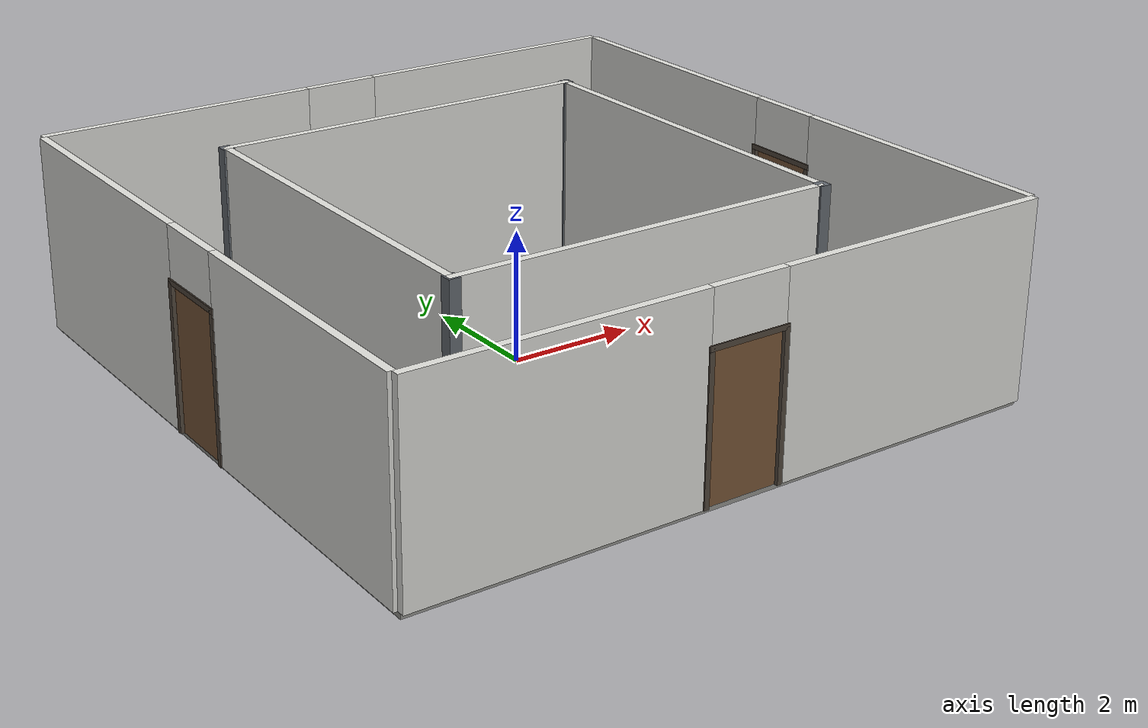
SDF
<?xml version="1.0"?>
<sdf version="1.8">
  <model name="atrium_corridor_10x10">
    <static>true</static>

    <link name="floor_n">
      <pose>0 4.0 -0.04 0 0 0</pose>
      <inertial><mass>1</mass><inertia><ixx>1</ixx><iyy>1</iyy><izz>1</izz></inertia></inertial>
      <collision name="floor_n_col">
        <geometry><box><size>10.0 2.0 0.08</size></box></geometry>
      </collision>
      <visual name="floor_n_vis">
        <geometry><box><size>10.0 2.0 0.08</size></box></geometry>
        <material>
          <ambient>0.58 0.58 0.56 1</ambient>
          <diffuse>0.58 0.58 0.56 1</diffuse>
          <specular>0.12 0.12 0.12 1</specular>
          <pbr>
            <metal>
              <albedo_map>file:///home/han1284/projects/ros2_ws/install/pro450_sim/share/pro450_sim/models/atrium_corridor_10x10/materials/textures/concrete.png</albedo_map>
              <metalness>0.0</metalness>
              <roughness>0.85</roughness>
            </metal>
          </pbr>
        </material>
      </visual>
    </link>
    <link name="floor_s">
      <pose>0 -4.0 -0.04 0 0 0</pose>
      <inertial><mass>1</mass><inertia><ixx>1</ixx><iyy>1</iyy><izz>1</izz></inertia></inertial>
      <collision name="floor_s_col">
        <geometry><box><size>10.0 2.0 0.08</size></box></geometry>
      </collision>
      <visual name="floor_s_vis">
        <geometry><box><size>10.0 2.0 0.08</size></box></geometry>
        <material>
          <ambient>0.58 0.58 0.56 1</ambient>
          <diffuse>0.58 0.58 0.56 1</diffuse>
          <specular>0.12 0.12 0.12 1</specular>
          <pbr>
            <metal>
              <albedo_map>file:///home/han1284/projects/ros2_ws/install/pro450_sim/share/pro450_sim/models/atrium_corridor_10x10/materials/textures/concrete.png</albedo_map>
              <metalness>0.0</metalness>
              <roughness>0.85</roughness>
            </metal>
          </pbr>
        </material>
      </visual>
    </link>
    <link name="floor_e">
      <pose>4.0 0 -0.04 0 0 0</pose>
      <inertial><mass>1</mass><inertia><ixx>1</ixx><iyy>1</iyy><izz>1</izz></inertia></inertial>
      <collision name="floor_e_col">
        <geometry><box><size>2.0 6.0 0.08</size></box></geometry>
      </collision>
      <visual name="floor_e_vis">
        <geometry><box><size>2.0 6.0 0.08</size></box></geometry>
        <material>
          <ambient>0.58 0.58 0.56 1</ambient>
          <diffuse>0.58 0.58 0.56 1</diffuse>
          <specular>0.12 0.12 0.12 1</specular>
          <pbr>
            <metal>
              <albedo_map>file:///home/han1284/projects/ros2_ws/install/pro450_sim/share/pro450_sim/models/atrium_corridor_10x10/materials/textures/concrete.png</albedo_map>
              <metalness>0.0</metalness>
              <roughness>0.85</roughness>
            </metal>
          </pbr>
        </material>
      </visual>
    </link>
    <link name="floor_w">
      <pose>-4.0 0 -0.04 0 0 0</pose>
      <inertial><mass>1</mass><inertia><ixx>1</ixx><iyy>1</iyy><izz>1</izz></inertia></inertial>
      <collision name="floor_w_col">
        <geometry><box><size>2.0 6.0 0.08</size></box></geometry>
      </collision>
      <visual name="floor_w_vis">
        <geometry><box><size>2.0 6.0 0.08</size></box></geometry>
        <material>
          <ambient>0.58 0.58 0.56 1</ambient>
          <diffuse>0.58 0.58 0.56 1</diffuse>
          <specular>0.12 0.12 0.12 1</specular>
          <pbr>
            <metal>
              <albedo_map>file:///home/han1284/projects/ros2_ws/install/pro450_sim/share/pro450_sim/models/atrium_corridor_10x10/materials/textures/concrete.png</albedo_map>
              <metalness>0.0</metalness>
              <roughness>0.85</roughness>
            </metal>
          </pbr>
        </material>
      </visual>
    </link>
    <link name="floor_atrium">
      <pose>0 0 -0.06 0 0 0</pose>
      <inertial><mass>1</mass><inertia><ixx>1</ixx><iyy>1</iyy><izz>1</izz></inertia></inertial>
      <collision name="floor_atrium_col">
        <geometry><box><size>6.0 6.0 0.08</size></box></geometry>
      </collision>
      <visual name="floor_atrium_vis">
        <geometry><box><size>6.0 6.0 0.08</size></box></geometry>
        <material>
          <ambient>0.72 0.72 0.70 1</ambient>
          <diffuse>0.72 0.72 0.70 1</diffuse>
          <specular>0.15 0.15 0.15 1</specular>
        </material>
      </visual>
    </link>
    <link name="wall_n_l">
      <pose>-2.8000000000000003 5.0 1.5 0 0 0</pose>
      <inertial><mass>1</mass><inertia><ixx>1</ixx><iyy>1</iyy><izz>1</izz></inertia></inertial>
      <collision name="wall_n_l_col">
        <geometry><box><size>4.4 0.12 3.0</size></box></geometry>
      </collision>
      <visual name="wall_n_l_vis">
        <geometry><box><size>4.4 0.12 3.0</size></box></geometry>
        <material>
          <ambient>0.88 0.88 0.86 1</ambient>
          <diffuse>0.88 0.88 0.86 1</diffuse>
          <specular>0.05 0.05 0.05 1</specular>
        </material>
      </visual>
    </link>
    <link name="wall_n_r">
      <pose>2.8000000000000003 5.0 1.5 0 0 0</pose>
      <inertial><mass>1</mass><inertia><ixx>1</ixx><iyy>1</iyy><izz>1</izz></inertia></inertial>
      <collision name="wall_n_r_col">
        <geometry><box><size>4.4 0.12 3.0</size></box></geometry>
      </collision>
      <visual name="wall_n_r_vis">
        <geometry><box><size>4.4 0.12 3.0</size></box></geometry>
        <material>
          <ambient>0.88 0.88 0.86 1</ambient>
          <diffuse>0.88 0.88 0.86 1</diffuse>
          <specular>0.05 0.05 0.05 1</specular>
        </material>
      </visual>
    </link>
    <link name="wall_n_lintel">
      <pose>0 5.0 2.6 0 0 0</pose>
      <inertial><mass>1</mass><inertia><ixx>1</ixx><iyy>1</iyy><izz>1</izz></inertia></inertial>
      <collision name="wall_n_lintel_col">
        <geometry><box><size>1.2 0.12 0.7999999999999998</size></box></geometry>
      </collision>
      <visual name="wall_n_lintel_vis">
        <geometry><box><size>1.2 0.12 0.7999999999999998</size></box></geometry>
        <material>
          <ambient>0.88 0.88 0.86 1</ambient>
          <diffuse>0.88 0.88 0.86 1</diffuse>
          <specular>0.05 0.05 0.05 1</specular>
        </material>
      </visual>
    </link>
    <link name="door_n_jamb_l">
      <pose>-0.6 5.0 1.1 0 0 0</pose>
      <inertial><mass>1</mass><inertia><ixx>1</ixx><iyy>1</iyy><izz>1</izz></inertia></inertial>
      <collision name="door_n_jamb_l_col">
        <geometry><box><size>0.08 0.16 2.2</size></box></geometry>
      </collision>
      <visual name="door_n_jamb_l_vis">
        <geometry><box><size>0.08 0.16 2.2</size></box></geometry>
        <material>
          <ambient>0.32 0.28 0.24 1</ambient>
          <diffuse>0.32 0.28 0.24 1</diffuse>
          <specular>0.12 0.12 0.12 1</specular>
        </material>
      </visual>
    </link>
    <link name="door_n_jamb_r">
      <pose>0.6 5.0 1.1 0 0 0</pose>
      <inertial><mass>1</mass><inertia><ixx>1</ixx><iyy>1</iyy><izz>1</izz></inertia></inertial>
      <collision name="door_n_jamb_r_col">
        <geometry><box><size>0.08 0.16 2.2</size></box></geometry>
      </collision>
      <visual name="door_n_jamb_r_vis">
        <geometry><box><size>0.08 0.16 2.2</size></box></geometry>
        <material>
          <ambient>0.32 0.28 0.24 1</ambient>
          <diffuse>0.32 0.28 0.24 1</diffuse>
          <specular>0.12 0.12 0.12 1</specular>
        </material>
      </visual>
    </link>
    <link name="door_n_head">
      <pose>0 5.0 2.2 0 0 0</pose>
      <inertial><mass>1</mass><inertia><ixx>1</ixx><iyy>1</iyy><izz>1</izz></inertia></inertial>
      <collision name="door_n_head_col">
        <geometry><box><size>1.28 0.16 0.08</size></box></geometry>
      </collision>
      <visual name="door_n_head_vis">
        <geometry><box><size>1.28 0.16 0.08</size></box></geometry>
        <material>
          <ambient>0.32 0.28 0.24 1</ambient>
          <diffuse>0.32 0.28 0.24 1</diffuse>
          <specular>0.12 0.12 0.12 1</specular>
        </material>
      </visual>
    </link>
    <link name="door_n_leaf">
      <pose>0 5.0 1.09 0 0 0</pose>
      <inertial><mass>1</mass><inertia><ixx>1</ixx><iyy>1</iyy><izz>1</izz></inertia></inertial>
      <collision name="door_n_leaf_col">
        <geometry><box><size>1.16 0.045 2.18</size></box></geometry>
      </collision>
      <visual name="door_n_leaf_vis">
        <geometry><box><size>1.16 0.045 2.18</size></box></geometry>
        <material>
          <ambient>0.48 0.34 0.22 1</ambient>
          <diffuse>0.48 0.34 0.22 1</diffuse>
          <specular>0.12 0.12 0.12 1</specular>
          <pbr>
            <metal>
              <albedo_map>file:///home/han1284/projects/ros2_ws/install/pro450_sim/share/pro450_sim/models/atrium_corridor_10x10/materials/textures/wood_cherry.png</albedo_map>
              <metalness>0.0</metalness>
              <roughness>0.85</roughness>
            </metal>
          </pbr>
        </material>
      </visual>
    </link>
    <link name="door_n_handle">
      <pose>0.40599999999999997 4.96 1.0 0 0 0</pose>
      <inertial><mass>1</mass><inertia><ixx>1</ixx><iyy>1</iyy><izz>1</izz></inertia></inertial>
      <collision name="door_n_handle_col">
        <geometry><box><size>0.02 0.06 0.12</size></box></geometry>
      </collision>
      <visual name="door_n_handle_vis">
        <geometry><box><size>0.02 0.06 0.12</size></box></geometry>
        <material>
          <ambient>0.75 0.72 0.68 1</ambient>
          <diffuse>0.75 0.72 0.68 1</diffuse>
          <specular>0.4 0.4 0.4 1</specular>
        </material>
      </visual>
    </link>
    <link name="wall_s_l">
      <pose>-2.8000000000000003 -5.0 1.5 0 0 0</pose>
      <inertial><mass>1</mass><inertia><ixx>1</ixx><iyy>1</iyy><izz>1</izz></inertia></inertial>
      <collision name="wall_s_l_col">
        <geometry><box><size>4.4 0.12 3.0</size></box></geometry>
      </collision>
      <visual name="wall_s_l_vis">
        <geometry><box><size>4.4 0.12 3.0</size></box></geometry>
        <material>
          <ambient>0.88 0.88 0.86 1</ambient>
          <diffuse>0.88 0.88 0.86 1</diffuse>
          <specular>0.05 0.05 0.05 1</specular>
        </material>
      </visual>
    </link>
    <link name="wall_s_r">
      <pose>2.8000000000000003 -5.0 1.5 0 0 0</pose>
      <inertial><mass>1</mass><inertia><ixx>1</ixx><iyy>1</iyy><izz>1</izz></inertia></inertial>
      <collision name="wall_s_r_col">
        <geometry><box><size>4.4 0.12 3.0</size></box></geometry>
      </collision>
      <visual name="wall_s_r_vis">
        <geometry><box><size>4.4 0.12 3.0</size></box></geometry>
        <material>
          <ambient>0.88 0.88 0.86 1</ambient>
          <diffuse>0.88 0.88 0.86 1</diffuse>
          <specular>0.05 0.05 0.05 1</specular>
        </material>
      </visual>
    </link>
    <link name="wall_s_lintel">
      <pose>0 -5.0 2.6 0 0 0</pose>
      <inertial><mass>1</mass><inertia><ixx>1</ixx><iyy>1</iyy><izz>1</izz></inertia></inertial>
      <collision name="wall_s_lintel_col">
        <geometry><box><size>1.2 0.12 0.7999999999999998</size></box></geometry>
      </collision>
      <visual name="wall_s_lintel_vis">
        <geometry><box><size>1.2 0.12 0.7999999999999998</size></box></geometry>
        <material>
          <ambient>0.88 0.88 0.86 1</ambient>
          <diffuse>0.88 0.88 0.86 1</diffuse>
          <specular>0.05 0.05 0.05 1</specular>
        </material>
      </visual>
    </link>
    <link name="door_s_jamb_l">
      <pose>-0.6 -5.0 1.1 0 0 0</pose>
      <inertial><mass>1</mass><inertia><ixx>1</ixx><iyy>1</iyy><izz>1</izz></inertia></inertial>
      <collision name="door_s_jamb_l_col">
        <geometry><box><size>0.08 0.16 2.2</size></box></geometry>
      </collision>
      <visual name="door_s_jamb_l_vis">
        <geometry><box><size>0.08 0.16 2.2</size></box></geometry>
        <material>
          <ambient>0.32 0.28 0.24 1</ambient>
          <diffuse>0.32 0.28 0.24 1</diffuse>
          <specular>0.12 0.12 0.12 1</specular>
        </material>
      </visual>
    </link>
    <link name="door_s_jamb_r">
      <pose>0.6 -5.0 1.1 0 0 0</pose>
      <inertial><mass>1</mass><inertia><ixx>1</ixx><iyy>1</iyy><izz>1</izz></inertia></inertial>
      <collision name="door_s_jamb_r_col">
        <geometry><box><size>0.08 0.16 2.2</size></box></geometry>
      </collision>
      <visual name="door_s_jamb_r_vis">
        <geometry><box><size>0.08 0.16 2.2</size></box></geometry>
        <material>
          <ambient>0.32 0.28 0.24 1</ambient>
          <diffuse>0.32 0.28 0.24 1</diffuse>
          <specular>0.12 0.12 0.12 1</specular>
        </material>
      </visual>
    </link>
    <link name="door_s_head">
      <pose>0 -5.0 2.2 0 0 0</pose>
      <inertial><mass>1</mass><inertia><ixx>1</ixx><iyy>1</iyy><izz>1</izz></inertia></inertial>
      <collision name="door_s_head_col">
        <geometry><box><size>1.28 0.16 0.08</size></box></geometry>
      </collision>
      <visual name="door_s_head_vis">
        <geometry><box><size>1.28 0.16 0.08</size></box></geometry>
        <material>
          <ambient>0.32 0.28 0.24 1</ambient>
          <diffuse>0.32 0.28 0.24 1</diffuse>
          <specular>0.12 0.12 0.12 1</specular>
        </material>
      </visual>
    </link>
    <link name="door_s_leaf">
      <pose>0 -5.0 1.09 0 0 0</pose>
      <inertial><mass>1</mass><inertia><ixx>1</ixx><iyy>1</iyy><izz>1</izz></inertia></inertial>
      <collision name="door_s_leaf_col">
        <geometry><box><size>1.16 0.045 2.18</size></box></geometry>
      </collision>
      <visual name="door_s_leaf_vis">
        <geometry><box><size>1.16 0.045 2.18</size></box></geometry>
        <material>
          <ambient>0.48 0.34 0.22 1</ambient>
          <diffuse>0.48 0.34 0.22 1</diffuse>
          <specular>0.12 0.12 0.12 1</specular>
          <pbr>
            <metal>
              <albedo_map>file:///home/han1284/projects/ros2_ws/install/pro450_sim/share/pro450_sim/models/atrium_corridor_10x10/materials/textures/wood_cherry.png</albedo_map>
              <metalness>0.0</metalness>
              <roughness>0.85</roughness>
            </metal>
          </pbr>
        </material>
      </visual>
    </link>
    <link name="door_s_handle">
      <pose>0.40599999999999997 -4.96 1.0 0 0 0</pose>
      <inertial><mass>1</mass><inertia><ixx>1</ixx><iyy>1</iyy><izz>1</izz></inertia></inertial>
      <collision name="door_s_handle_col">
        <geometry><box><size>0.02 0.06 0.12</size></box></geometry>
      </collision>
      <visual name="door_s_handle_vis">
        <geometry><box><size>0.02 0.06 0.12</size></box></geometry>
        <material>
          <ambient>0.75 0.72 0.68 1</ambient>
          <diffuse>0.75 0.72 0.68 1</diffuse>
          <specular>0.4 0.4 0.4 1</specular>
        </material>
      </visual>
    </link>
    <link name="wall_e_a">
      <pose>5.0 2.7700000000000005 1.5 0 0 0</pose>
      <inertial><mass>1</mass><inertia><ixx>1</ixx><iyy>1</iyy><izz>1</izz></inertia></inertial>
      <collision name="wall_e_a_col">
        <geometry><box><size>0.12 4.340000000000001 3.0</size></box></geometry>
      </collision>
      <visual name="wall_e_a_vis">
        <geometry><box><size>0.12 4.340000000000001 3.0</size></box></geometry>
        <material>
          <ambient>0.88 0.88 0.86 1</ambient>
          <diffuse>0.88 0.88 0.86 1</diffuse>
          <specular>0.05 0.05 0.05 1</specular>
        </material>
      </visual>
    </link>
    <link name="wall_e_b">
      <pose>5.0 -2.7700000000000005 1.5 0 0 0</pose>
      <inertial><mass>1</mass><inertia><ixx>1</ixx><iyy>1</iyy><izz>1</izz></inertia></inertial>
      <collision name="wall_e_b_col">
        <geometry><box><size>0.12 4.340000000000001 3.0</size></box></geometry>
      </collision>
      <visual name="wall_e_b_vis">
        <geometry><box><size>0.12 4.340000000000001 3.0</size></box></geometry>
        <material>
          <ambient>0.88 0.88 0.86 1</ambient>
          <diffuse>0.88 0.88 0.86 1</diffuse>
          <specular>0.05 0.05 0.05 1</specular>
        </material>
      </visual>
    </link>
    <link name="wall_e_lintel">
      <pose>5.0 0 2.6 0 0 0</pose>
      <inertial><mass>1</mass><inertia><ixx>1</ixx><iyy>1</iyy><izz>1</izz></inertia></inertial>
      <collision name="wall_e_lintel_col">
        <geometry><box><size>0.12 1.2 0.7999999999999998</size></box></geometry>
      </collision>
      <visual name="wall_e_lintel_vis">
        <geometry><box><size>0.12 1.2 0.7999999999999998</size></box></geometry>
        <material>
          <ambient>0.88 0.88 0.86 1</ambient>
          <diffuse>0.88 0.88 0.86 1</diffuse>
          <specular>0.05 0.05 0.05 1</specular>
        </material>
      </visual>
    </link>
    <link name="door_e_jamb_a">
      <pose>5.0 0.6 1.1 0 0 0</pose>
      <inertial><mass>1</mass><inertia><ixx>1</ixx><iyy>1</iyy><izz>1</izz></inertia></inertial>
      <collision name="door_e_jamb_a_col">
        <geometry><box><size>0.16 0.08 2.2</size></box></geometry>
      </collision>
      <visual name="door_e_jamb_a_vis">
        <geometry><box><size>0.16 0.08 2.2</size></box></geometry>
        <material>
          <ambient>0.32 0.28 0.24 1</ambient>
          <diffuse>0.32 0.28 0.24 1</diffuse>
          <specular>0.12 0.12 0.12 1</specular>
        </material>
      </visual>
    </link>
    <link name="door_e_jamb_b">
      <pose>5.0 -0.6 1.1 0 0 0</pose>
      <inertial><mass>1</mass><inertia><ixx>1</ixx><iyy>1</iyy><izz>1</izz></inertia></inertial>
      <collision name="door_e_jamb_b_col">
        <geometry><box><size>0.16 0.08 2.2</size></box></geometry>
      </collision>
      <visual name="door_e_jamb_b_vis">
        <geometry><box><size>0.16 0.08 2.2</size></box></geometry>
        <material>
          <ambient>0.32 0.28 0.24 1</ambient>
          <diffuse>0.32 0.28 0.24 1</diffuse>
          <specular>0.12 0.12 0.12 1</specular>
        </material>
      </visual>
    </link>
    <link name="door_e_head">
      <pose>5.0 0 2.2 0 0 0</pose>
      <inertial><mass>1</mass><inertia><ixx>1</ixx><iyy>1</iyy><izz>1</izz></inertia></inertial>
      <collision name="door_e_head_col">
        <geometry><box><size>0.16 1.28 0.08</size></box></geometry>
      </collision>
      <visual name="door_e_head_vis">
        <geometry><box><size>0.16 1.28 0.08</size></box></geometry>
        <material>
          <ambient>0.32 0.28 0.24 1</ambient>
          <diffuse>0.32 0.28 0.24 1</diffuse>
          <specular>0.12 0.12 0.12 1</specular>
        </material>
      </visual>
    </link>
    <link name="door_e_leaf">
      <pose>5.0 0 1.09 0 0 0</pose>
      <inertial><mass>1</mass><inertia><ixx>1</ixx><iyy>1</iyy><izz>1</izz></inertia></inertial>
      <collision name="door_e_leaf_col">
        <geometry><box><size>0.045 1.16 2.18</size></box></geometry>
      </collision>
      <visual name="door_e_leaf_vis">
        <geometry><box><size>0.045 1.16 2.18</size></box></geometry>
        <material>
          <ambient>0.48 0.34 0.22 1</ambient>
          <diffuse>0.48 0.34 0.22 1</diffuse>
          <specular>0.12 0.12 0.12 1</specular>
          <pbr>
            <metal>
              <albedo_map>file:///home/han1284/projects/ros2_ws/install/pro450_sim/share/pro450_sim/models/atrium_corridor_10x10/materials/textures/wood_cherry.png</albedo_map>
              <metalness>0.0</metalness>
              <roughness>0.85</roughness>
            </metal>
          </pbr>
        </material>
      </visual>
    </link>
    <link name="door_e_handle">
      <pose>4.96 0.40599999999999997 1.0 0 0 0</pose>
      <inertial><mass>1</mass><inertia><ixx>1</ixx><iyy>1</iyy><izz>1</izz></inertia></inertial>
      <collision name="door_e_handle_col">
        <geometry><box><size>0.06 0.02 0.12</size></box></geometry>
      </collision>
      <visual name="door_e_handle_vis">
        <geometry><box><size>0.06 0.02 0.12</size></box></geometry>
        <material>
          <ambient>0.75 0.72 0.68 1</ambient>
          <diffuse>0.75 0.72 0.68 1</diffuse>
          <specular>0.4 0.4 0.4 1</specular>
        </material>
      </visual>
    </link>
    <link name="wall_w_a">
      <pose>-5.0 2.7700000000000005 1.5 0 0 0</pose>
      <inertial><mass>1</mass><inertia><ixx>1</ixx><iyy>1</iyy><izz>1</izz></inertia></inertial>
      <collision name="wall_w_a_col">
        <geometry><box><size>0.12 4.340000000000001 3.0</size></box></geometry>
      </collision>
      <visual name="wall_w_a_vis">
        <geometry><box><size>0.12 4.340000000000001 3.0</size></box></geometry>
        <material>
          <ambient>0.88 0.88 0.86 1</ambient>
          <diffuse>0.88 0.88 0.86 1</diffuse>
          <specular>0.05 0.05 0.05 1</specular>
        </material>
      </visual>
    </link>
    <link name="wall_w_b">
      <pose>-5.0 -2.7700000000000005 1.5 0 0 0</pose>
      <inertial><mass>1</mass><inertia><ixx>1</ixx><iyy>1</iyy><izz>1</izz></inertia></inertial>
      <collision name="wall_w_b_col">
        <geometry><box><size>0.12 4.340000000000001 3.0</size></box></geometry>
      </collision>
      <visual name="wall_w_b_vis">
        <geometry><box><size>0.12 4.340000000000001 3.0</size></box></geometry>
        <material>
          <ambient>0.88 0.88 0.86 1</ambient>
          <diffuse>0.88 0.88 0.86 1</diffuse>
          <specular>0.05 0.05 0.05 1</specular>
        </material>
      </visual>
    </link>
    <link name="wall_w_lintel">
      <pose>-5.0 0 2.6 0 0 0</pose>
      <inertial><mass>1</mass><inertia><ixx>1</ixx><iyy>1</iyy><izz>1</izz></inertia></inertial>
      <collision name="wall_w_lintel_col">
        <geometry><box><size>0.12 1.2 0.7999999999999998</size></box></geometry>
      </collision>
      <visual name="wall_w_lintel_vis">
        <geometry><box><size>0.12 1.2 0.7999999999999998</size></box></geometry>
        <material>
          <ambient>0.88 0.88 0.86 1</ambient>
          <diffuse>0.88 0.88 0.86 1</diffuse>
          <specular>0.05 0.05 0.05 1</specular>
        </material>
      </visual>
    </link>
    <link name="door_w_jamb_a">
      <pose>-5.0 0.6 1.1 0 0 0</pose>
      <inertial><mass>1</mass><inertia><ixx>1</ixx><iyy>1</iyy><izz>1</izz></inertia></inertial>
      <collision name="door_w_jamb_a_col">
        <geometry><box><size>0.16 0.08 2.2</size></box></geometry>
      </collision>
      <visual name="door_w_jamb_a_vis">
        <geometry><box><size>0.16 0.08 2.2</size></box></geometry>
        <material>
          <ambient>0.32 0.28 0.24 1</ambient>
          <diffuse>0.32 0.28 0.24 1</diffuse>
          <specular>0.12 0.12 0.12 1</specular>
        </material>
      </visual>
    </link>
    <link name="door_w_jamb_b">
      <pose>-5.0 -0.6 1.1 0 0 0</pose>
      <inertial><mass>1</mass><inertia><ixx>1</ixx><iyy>1</iyy><izz>1</izz></inertia></inertial>
      <collision name="door_w_jamb_b_col">
        <geometry><box><size>0.16 0.08 2.2</size></box></geometry>
      </collision>
      <visual name="door_w_jamb_b_vis">
        <geometry><box><size>0.16 0.08 2.2</size></box></geometry>
        <material>
          <ambient>0.32 0.28 0.24 1</ambient>
          <diffuse>0.32 0.28 0.24 1</diffuse>
          <specular>0.12 0.12 0.12 1</specular>
        </material>
      </visual>
    </link>
    <link name="door_w_head">
      <pose>-5.0 0 2.2 0 0 0</pose>
      <inertial><mass>1</mass><inertia><ixx>1</ixx><iyy>1</iyy><izz>1</izz></inertia></inertial>
      <collision name="door_w_head_col">
        <geometry><box><size>0.16 1.28 0.08</size></box></geometry>
      </collision>
      <visual name="door_w_head_vis">
        <geometry><box><size>0.16 1.28 0.08</size></box></geometry>
        <material>
          <ambient>0.32 0.28 0.24 1</ambient>
          <diffuse>0.32 0.28 0.24 1</diffuse>
          <specular>0.12 0.12 0.12 1</specular>
        </material>
      </visual>
    </link>
    <link name="door_w_leaf">
      <pose>-5.0 0 1.09 0 0 0</pose>
      <inertial><mass>1</mass><inertia><ixx>1</ixx><iyy>1</iyy><izz>1</izz></inertia></inertial>
      <collision name="door_w_leaf_col">
        <geometry><box><size>0.045 1.16 2.18</size></box></geometry>
      </collision>
      <visual name="door_w_leaf_vis">
        <geometry><box><size>0.045 1.16 2.18</size></box></geometry>
        <material>
          <ambient>0.48 0.34 0.22 1</ambient>
          <diffuse>0.48 0.34 0.22 1</diffuse>
          <specular>0.12 0.12 0.12 1</specular>
          <pbr>
            <metal>
              <albedo_map>file:///home/han1284/projects/ros2_ws/install/pro450_sim/share/pro450_sim/models/atrium_corridor_10x10/materials/textures/wood_cherry.png</albedo_map>
              <metalness>0.0</metalness>
              <roughness>0.85</roughness>
            </metal>
          </pbr>
        </material>
      </visual>
    </link>
    <link name="door_w_handle">
      <pose>-4.96 0.40599999999999997 1.0 0 0 0</pose>
      <inertial><mass>1</mass><inertia><ixx>1</ixx><iyy>1</iyy><izz>1</izz></inertia></inertial>
      <collision name="door_w_handle_col">
        <geometry><box><size>0.06 0.02 0.12</size></box></geometry>
      </collision>
      <visual name="door_w_handle_vis">
        <geometry><box><size>0.06 0.02 0.12</size></box></geometry>
        <material>
          <ambient>0.75 0.72 0.68 1</ambient>
          <diffuse>0.75 0.72 0.68 1</diffuse>
          <specular>0.4 0.4 0.4 1</specular>
        </material>
      </visual>
    </link>
    <link name="atrium_wall_n">
      <pose>0 3.0 1.5 0 0 0</pose>
      <inertial><mass>1</mass><inertia><ixx>1</ixx><iyy>1</iyy><izz>1</izz></inertia></inertial>
      <collision name="atrium_wall_n_col">
        <geometry><box><size>6.12 0.12 3.0</size></box></geometry>
      </collision>
      <visual name="atrium_wall_n_vis">
        <geometry><box><size>6.12 0.12 3.0</size></box></geometry>
        <material>
          <ambient>0.88 0.88 0.86 1</ambient>
          <diffuse>0.88 0.88 0.86 1</diffuse>
          <specular>0.05 0.05 0.05 1</specular>
        </material>
      </visual>
    </link>
    <link name="atrium_wall_s">
      <pose>0 -3.0 1.5 0 0 0</pose>
      <inertial><mass>1</mass><inertia><ixx>1</ixx><iyy>1</iyy><izz>1</izz></inertia></inertial>
      <collision name="atrium_wall_s_col">
        <geometry><box><size>6.12 0.12 3.0</size></box></geometry>
      </collision>
      <visual name="atrium_wall_s_vis">
        <geometry><box><size>6.12 0.12 3.0</size></box></geometry>
        <material>
          <ambient>0.88 0.88 0.86 1</ambient>
          <diffuse>0.88 0.88 0.86 1</diffuse>
          <specular>0.05 0.05 0.05 1</specular>
        </material>
      </visual>
    </link>
    <link name="atrium_wall_e">
      <pose>3.0 0 1.5 0 0 0</pose>
      <inertial><mass>1</mass><inertia><ixx>1</ixx><iyy>1</iyy><izz>1</izz></inertia></inertial>
      <collision name="atrium_wall_e_col">
        <geometry><box><size>0.12 5.88 3.0</size></box></geometry>
      </collision>
      <visual name="atrium_wall_e_vis">
        <geometry><box><size>0.12 5.88 3.0</size></box></geometry>
        <material>
          <ambient>0.88 0.88 0.86 1</ambient>
          <diffuse>0.88 0.88 0.86 1</diffuse>
          <specular>0.05 0.05 0.05 1</specular>
        </material>
      </visual>
    </link>
    <link name="atrium_wall_w">
      <pose>-3.0 0 1.5 0 0 0</pose>
      <inertial><mass>1</mass><inertia><ixx>1</ixx><iyy>1</iyy><izz>1</izz></inertia></inertial>
      <collision name="atrium_wall_w_col">
        <geometry><box><size>0.12 5.88 3.0</size></box></geometry>
      </collision>
      <visual name="atrium_wall_w_vis">
        <geometry><box><size>0.12 5.88 3.0</size></box></geometry>
        <material>
          <ambient>0.88 0.88 0.86 1</ambient>
          <diffuse>0.88 0.88 0.86 1</diffuse>
          <specular>0.05 0.05 0.05 1</specular>
        </material>
      </visual>
    </link>
    <link name="post_0">
      <pose>3.0 3.0 1.5 0 0 0</pose>
      <inertial><mass>1</mass><inertia><ixx>1</ixx><iyy>1</iyy><izz>1</izz></inertia></inertial>
      <collision name="post_0_col">
        <geometry><box><size>0.18 0.18 3.0</size></box></geometry>
      </collision>
      <visual name="post_0_vis">
        <geometry><box><size>0.18 0.18 3.0</size></box></geometry>
        <material>
          <ambient>0.40 0.42 0.45 1</ambient>
          <diffuse>0.40 0.42 0.45 1</diffuse>
          <specular>0.08 0.08 0.08 1</specular>
        </material>
      </visual>
    </link>
    <link name="post_1">
      <pose>3.0 -3.0 1.5 0 0 0</pose>
      <inertial><mass>1</mass><inertia><ixx>1</ixx><iyy>1</iyy><izz>1</izz></inertia></inertial>
      <collision name="post_1_col">
        <geometry><box><size>0.18 0.18 3.0</size></box></geometry>
      </collision>
      <visual name="post_1_vis">
        <geometry><box><size>0.18 0.18 3.0</size></box></geometry>
        <material>
          <ambient>0.40 0.42 0.45 1</ambient>
          <diffuse>0.40 0.42 0.45 1</diffuse>
          <specular>0.08 0.08 0.08 1</specular>
        </material>
      </visual>
    </link>
    <link name="post_2">
      <pose>-3.0 3.0 1.5 0 0 0</pose>
      <inertial><mass>1</mass><inertia><ixx>1</ixx><iyy>1</iyy><izz>1</izz></inertia></inertial>
      <collision name="post_2_col">
        <geometry><box><size>0.18 0.18 3.0</size></box></geometry>
      </collision>
      <visual name="post_2_vis">
        <geometry><box><size>0.18 0.18 3.0</size></box></geometry>
        <material>
          <ambient>0.40 0.42 0.45 1</ambient>
          <diffuse>0.40 0.42 0.45 1</diffuse>
          <specular>0.08 0.08 0.08 1</specular>
        </material>
      </visual>
    </link>
    <link name="post_3">
      <pose>-3.0 -3.0 1.5 0 0 0</pose>
      <inertial><mass>1</mass><inertia><ixx>1</ixx><iyy>1</iyy><izz>1</izz></inertia></inertial>
      <collision name="post_3_col">
        <geometry><box><size>0.18 0.18 3.0</size></box></geometry>
      </collision>
      <visual name="post_3_vis">
        <geometry><box><size>0.18 0.18 3.0</size></box></geometry>
        <material>
          <ambient>0.40 0.42 0.45 1</ambient>
          <diffuse>0.40 0.42 0.45 1</diffuse>
          <specular>0.08 0.08 0.08 1</specular>
        </material>
      </visual>
    </link>
  </model>
</sdf>
